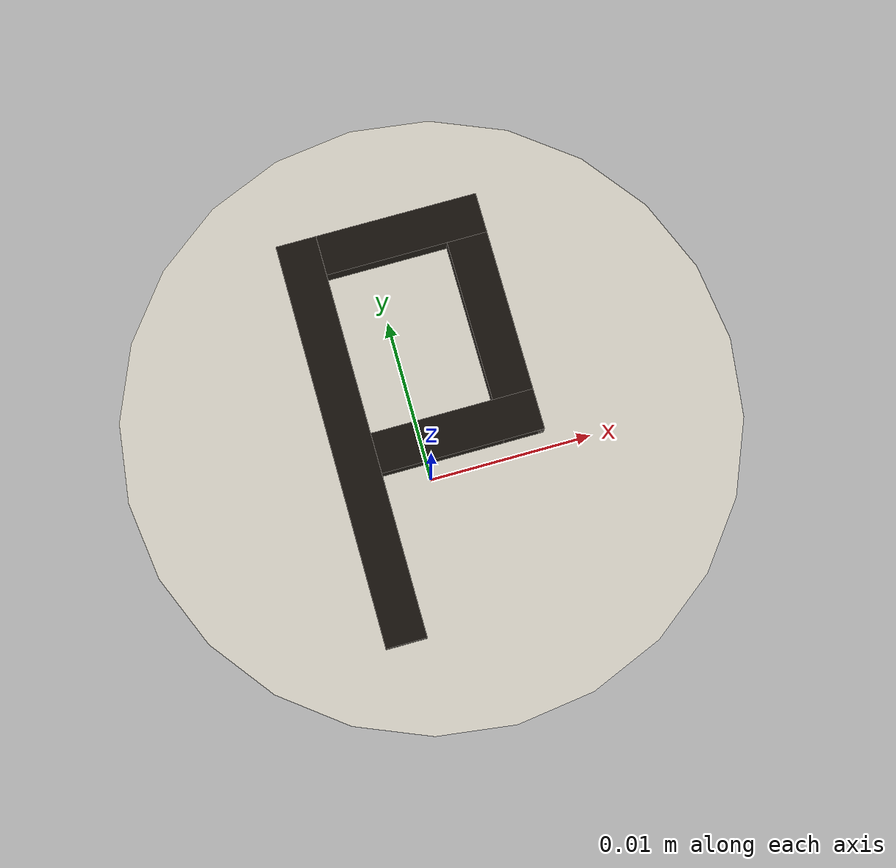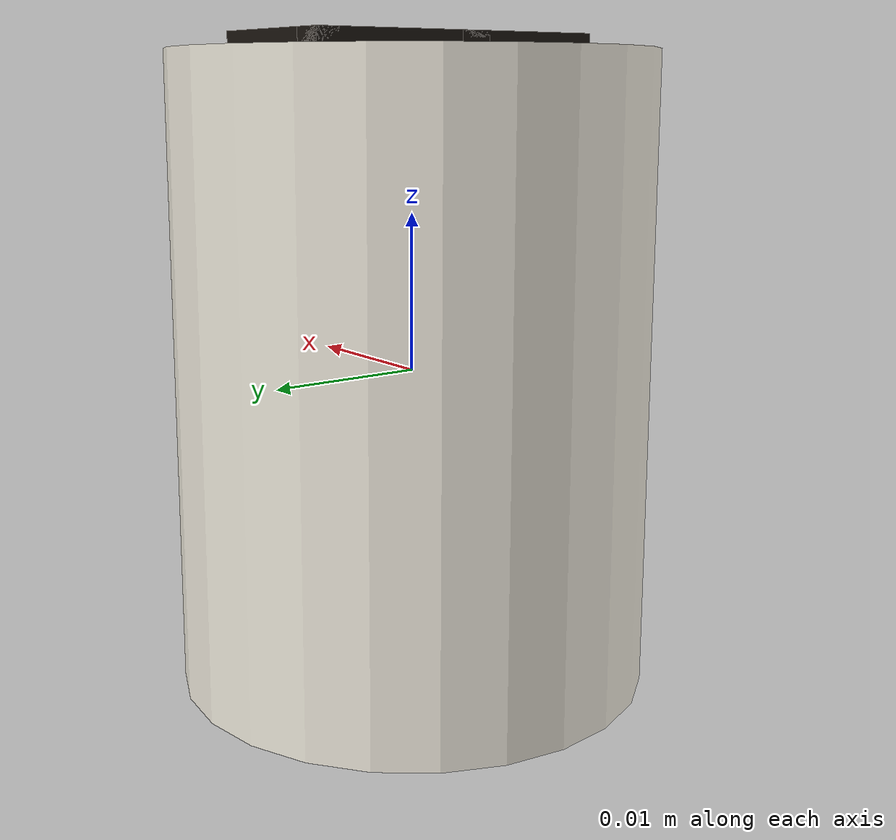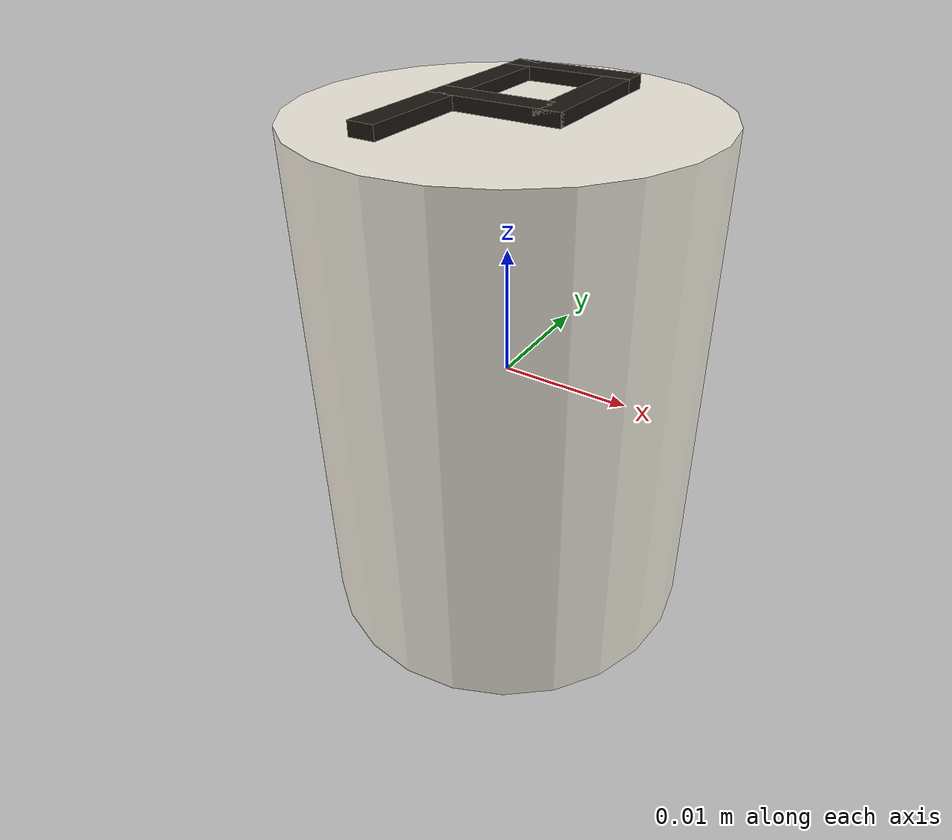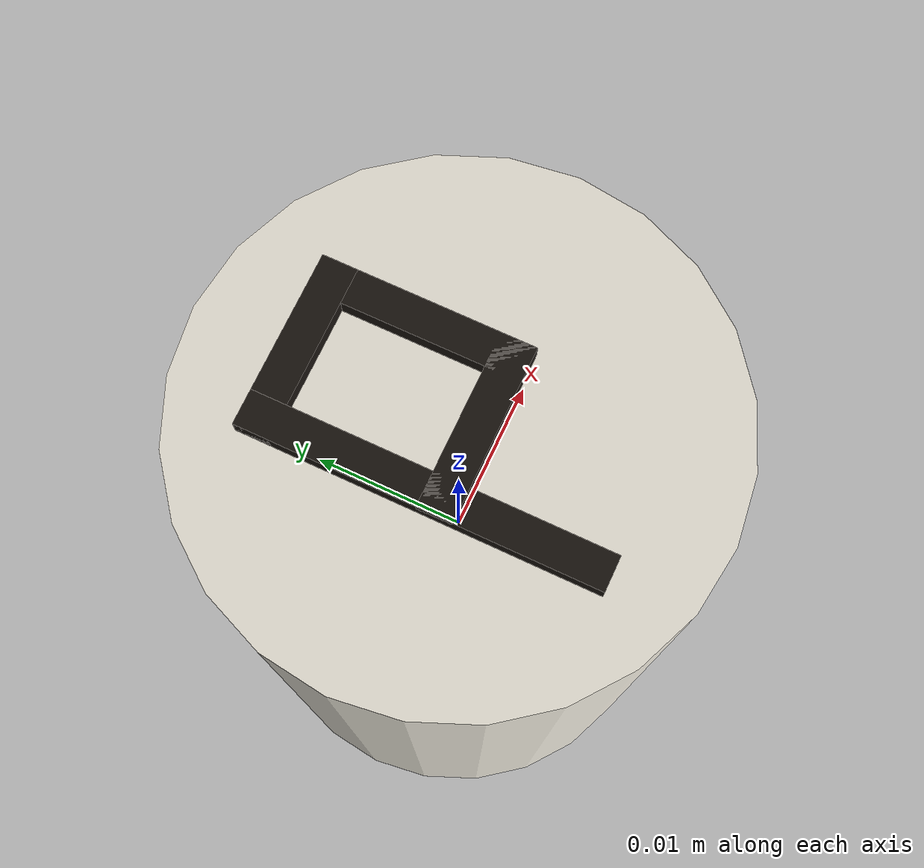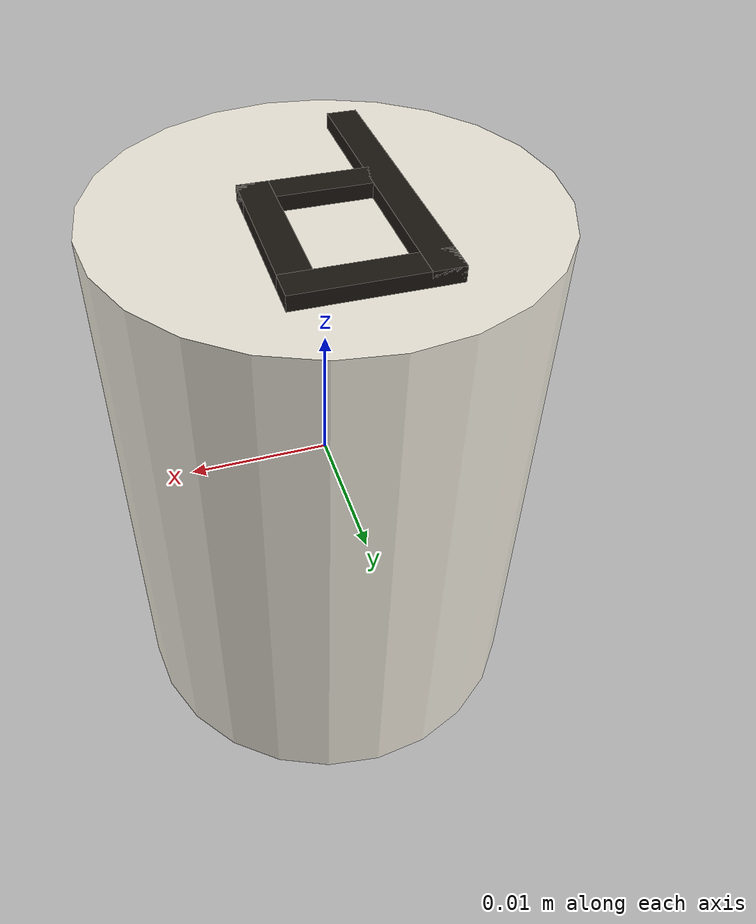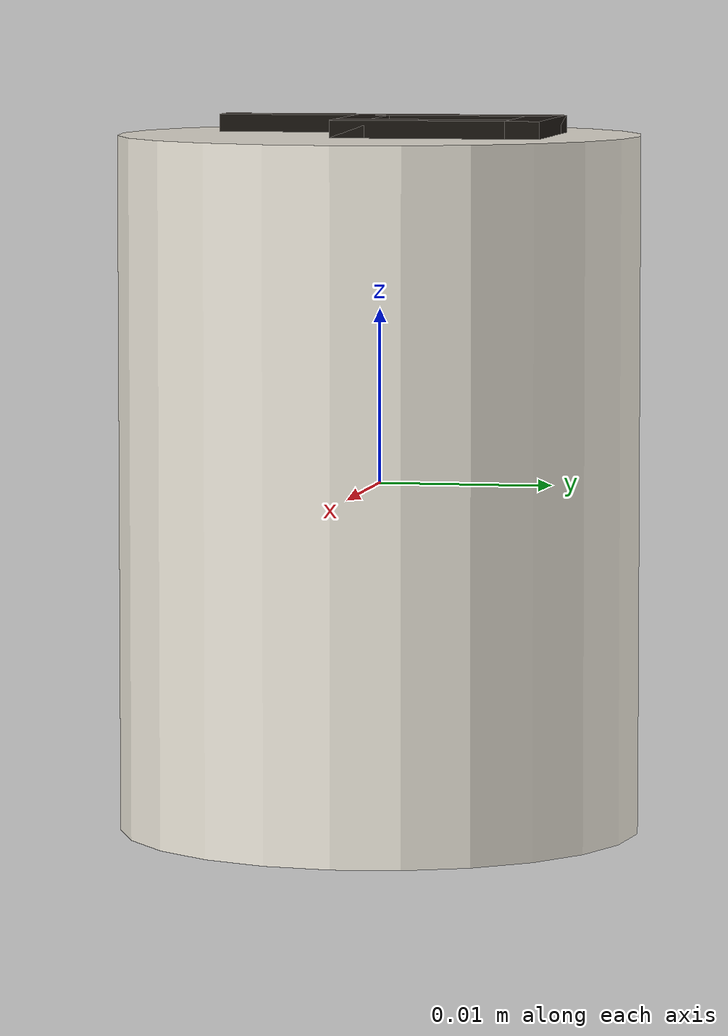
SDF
<?xml version="1.0" ?>
<sdf version="1.9">
  <model name="pawn_white">
    <static>false</static>
    <pose>0 0 0 0 0 0</pose>

    <link name="link">

      <!-- Physics -->
      <inertial>
        <mass>0.05</mass>   <!-- 50 grams -->
        <inertia>
          <ixx>0.00002</ixx>
          <iyy>0.00002</iyy>
          <izz>0.00001</izz>
        </inertia>
      </inertial>

      <!-- Collision (simple cylinder = stable) -->
      <collision name="collision">
        <geometry>
          <cylinder>
            <radius>0.015</radius>
            <length>0.04</length>
          </cylinder>
        </geometry>
        <surface>
          <friction>
            <ode>
              <mu>1.8</mu>
              <mu2>1.8</mu2>
            </ode>
          </friction>
        </surface>
      </collision>

      <!-- Visual: cylinder body -->
      <visual name="visual">
        <geometry>
          <cylinder>
            <radius>0.015</radius>
            <length>0.04</length>
          </cylinder>
        </geometry>
        <material>
          <ambient>0.92 0.90 0.85 1</ambient>
          <diffuse>0.92 0.90 0.85 1</diffuse>
        </material>
      </visual>

      <!-- "P" imprint on top, built from thin boxes (visual only).
           Cylinder top is at link-z = +0.020; letter sits at +0.0205. -->
      <visual name="letter_stem">
        <pose>-0.004 0 0.0205 0 0 0</pose>
        <geometry><box><size>0.002 0.020 0.001</size></box></geometry>
        <material>
          <ambient>0.10 0.08 0.06 1</ambient>
          <diffuse>0.10 0.08 0.06 1</diffuse>
        </material>
      </visual>
      <visual name="letter_top">
        <pose>0 0.009 0.0205 0 0 0</pose>
        <geometry><box><size>0.010 0.002 0.001</size></box></geometry>
        <material>
          <ambient>0.10 0.08 0.06 1</ambient>
          <diffuse>0.10 0.08 0.06 1</diffuse>
        </material>
      </visual>
      <visual name="letter_middle">
        <pose>0 -0.001 0.0205 0 0 0</pose>
        <geometry><box><size>0.010 0.002 0.001</size></box></geometry>
        <material>
          <ambient>0.10 0.08 0.06 1</ambient>
          <diffuse>0.10 0.08 0.06 1</diffuse>
        </material>
      </visual>
      <visual name="letter_loop_right">
        <pose>0.004 0.003 0.0205 0 0 0</pose>
        <geometry><box><size>0.002 0.010 0.001</size></box></geometry>
        <material>
          <ambient>0.10 0.08 0.06 1</ambient>
          <diffuse>0.10 0.08 0.06 1</diffuse>
        </material>
      </visual>

    </link>
  </model>
</sdf>
